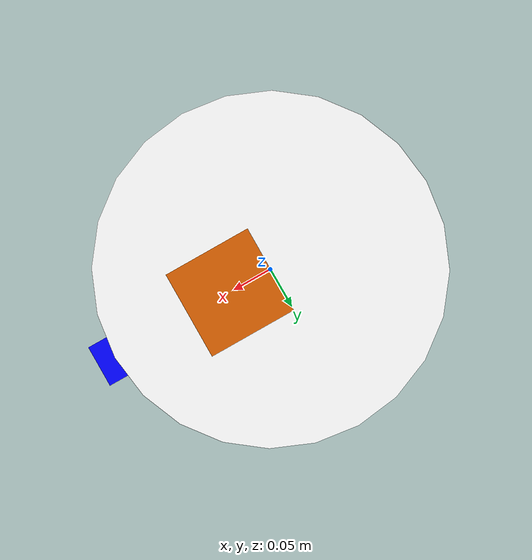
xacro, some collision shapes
<?xml version='1.0'?>

<robot name="slam_project" xmlns:xacro="http://www.ros.org/wiki/xacro">
  <xacro:include filename="$(find slam_project)/urdf/my_robot.gazebo"/>
  <link name="robot_footprint"></link>

  <joint name="robot_footprint_joint" type="fixed">
    <origin xyz="0 0 0" rpy="0 0 0" />
    <parent link="robot_footprint"/>
    <child link="chassis" />
  </joint>

  <!-- Chassis Link -->
  <link name='chassis'>
    <pose>0 0 0.1 0 0 0</pose>

    <inertial>
      <mass value="20.0"/>
      <origin xyz="0.0 0 0" rpy=" 0 0 0"/>
      <inertia
          ixx="0.05" ixy="0" ixz="0"
          iyy="0.05" iyz="0"
          izz="0.05"
      />
    </inertial>

    <collision name='collision'>
      <origin xyz="0 0 0" rpy=" 0 0 0"/>
      <geometry>
        <cylinder radius="0.2" length="0.1"/>
      </geometry>
    </collision>

    <visual name='chassis_visual'>
      <origin xyz="0 0 0" rpy=" 0 0 0"/>
      <geometry>
        <cylinder radius="0.2" length="0.1"/>
      </geometry>
      <material name="white">
        <color rgba="1 1 1 1"/>
      </material>
    </visual>

    <collision name='back_caster_collision'>
      <origin xyz="-0.15 0 -0.05" rpy=" 0 0 0"/>
      <geometry>
        <sphere radius="0.0499"/>
      </geometry>
      <surface>
        <friction>
          <ode>
            <mu>0</mu>
            <mu2>0</mu2>
            <slip1>1.0</slip1>
            <slip2>1.0</slip2>
          </ode>
        </friction>
      </surface>
    </collision>

    <visual name='back_caster_visual'>
      <origin xyz="-0.15 0 -0.05" rpy=" 0 0 0"/>
      <geometry>
        <sphere radius="0.0499"/>
      </geometry>
    </visual>

    <collision name='front_caster_collision'>
      <origin xyz="0.15 0 -0.05" rpy=" 0 0 0"/>
      <geometry>
        <sphere radius="0.0499"/>
      </geometry>
      <surface>
        <friction>
          <ode>
            <mu>0</mu>
            <mu2>0</mu2>
            <slip1>1.0</slip1>
            <slip2>1.0</slip2>
          </ode>
        </friction>
      </surface>
    </collision>

    <visual name='front_caster_visual'>
      <origin xyz="0.15 0 -0.05" rpy=" 0 0 0"/>
      <geometry>
        <sphere radius="0.0499"/>
      </geometry>
    </visual>
  </link>

   <!-- Left Wheel Link -->

  <link name="left_wheel">

    <inertial>
      <mass value="2.5"/>
      <origin xyz="0 0 0" rpy="0 1.5707 1.5707"/>
      <inertia
          ixx="0.1" ixy="0" ixz="0"
          iyy="0.1" iyz="0"
          izz="0.1"
      />
    </inertial>
    <visual>
      <geometry>
        <cylinder length="0.05" radius="0.05"/>
      </geometry>
      <origin xyz="0 0 0" rpy="0 1.5707 1.5707"/>
      <material name="black">
        <color rgba="0 0 0 1"/>
      </material>
    </visual>
    <collision>
      <geometry>
        <cylinder length="0.05" radius="0.05"/>
      </geometry>
      <origin xyz="0 0 0" rpy="0 1.5707 1.5707"/>
    </collision>
  </link>

  <!-- Right Wheel Link -->

  <link name="right_wheel">

    <inertial>
      <mass value="2.5"/>
      <origin xyz="0 0 0" rpy="0 1.5707 1.5707"/>
      <inertia
          ixx="0.1" ixy="0" ixz="0"
          iyy="0.1" iyz="0"
          izz="0.1"
      />
    </inertial>
    <visual>
      <geometry>
        <cylinder length="0.05" radius="0.05"/>
      </geometry>
      <origin xyz="0 0 0" rpy="0 1.5707 1.5707"/>
      <material name="black">
        <color rgba="0 0 0 1"/>
      </material>
    </visual>
    <collision>
      <geometry>
        <cylinder length="0.05" radius="0.05"/>
      </geometry>
      <origin xyz="0 0 0" rpy="0 1.5707 1.5707"/>
    </collision>
  </link>

  <!-- Camera Link -->

  <link name="camera">

    <inertial>
      <mass value="0.1"/>
      <origin xyz="0 0 0" rpy="0 0 0"/>
      <inertia
          ixx="1e-6" ixy="0" ixz="0"
          iyy="1e-6" iyz="0"
          izz="1e-6"
      />
    </inertial>
    <visual>
      <geometry>
        <box size="0.05 0.05 0.05"/>
      </geometry>
      <origin xyz="0 0 0" rpy="0 0 0"/>
      <material name="red">
        <color rgba="0 0 1 1"/>
      </material>
    </visual>
    <collision>
      <geometry>
        <box size="0.05 0.05 0.05"/>
      </geometry>
      <origin xyz="0 0 0" rpy="0 0 0"/>
    </collision>
  </link>

  <!-- Hokuyo Link -->

  <link name="hokuyo">

    <inertial>
      <mass value="0.1"/>
      <origin xyz="0 0 0" rpy="0 0 0"/>
      <inertia
          ixx="1e-6" ixy="0" ixz="0"
          iyy="1e-6" iyz="0"
          izz="1e-6"
      />
    </inertial>
    <visual>
      <geometry>
        <mesh filename="package://slam_project/meshes/hokuyo.dae"/>
      </geometry>
      <origin xyz="0 0 0" rpy="0 0 0"/>
    </visual>
    <collision>
      <geometry>
        <box size="0.1 0.1 0.1"/>
      </geometry>
      <origin xyz="0 0 0" rpy="0 0 0"/>
    </collision>
  </link>

  <!-- Joints -->

  <joint type="continuous" name="left_wheel_hinge">
    <origin xyz="0 0.15 -0.05" rpy="0 0 0"/>
    <child link="left_wheel"/>
    <parent link="chassis"/>
    <axis xyz="0 1 0" rpy="0 0 0"/>
    <limit effort="10000" velocity="1000"/>
    <joint_properties damping="1.0" friction="1.0"/>
  </joint>

  <joint type="continuous" name="right_wheel_hinge">
    <origin xyz="0 -0.15 -0.05" rpy="0 0 0"/>
    <child link="right_wheel"/>
    <parent link="chassis"/>
    <axis xyz="0 1 0" rpy="0 0 0"/>
    <limit effort="10000" velocity="1000"/>
    <joint_properties damping="1.0" friction="1.0"/>
  </joint>

  <joint type="fixed" name="camera_link">
    <origin xyz="0.2 0 0" rpy="0 0 0"/>
    <child link="camera"/>
    <parent link="chassis"/>
  </joint>

  <joint type="fixed" name="camera_joint">
    <origin xyz="0 0 0" rpy="0 0 0"/>
    <parent link="camera"/>
    <child link="camera_rgbd_frame"/>
  </joint>
  <link name="camera_rgbd_frame"/>

  <joint type="fixed" name="hokuyo_joint">
    <origin xyz="0.05 0 0.05" rpy="0 0 0"/>
    <child link="hokuyo"/>
    <parent link="chassis"/>
  </joint>

  <joint name="camera_rgbd_optical_joint" type="fixed">
    <origin xyz="0 0 0" rpy="-1.5707 0 -1.5707" />
    <parent link="camera_rgbd_frame" />
    <child link="camera_rgbd_optical_frame" />
  </joint>

  <link name="camera_rgbd_optical_frame">
  </link>

</robot>
